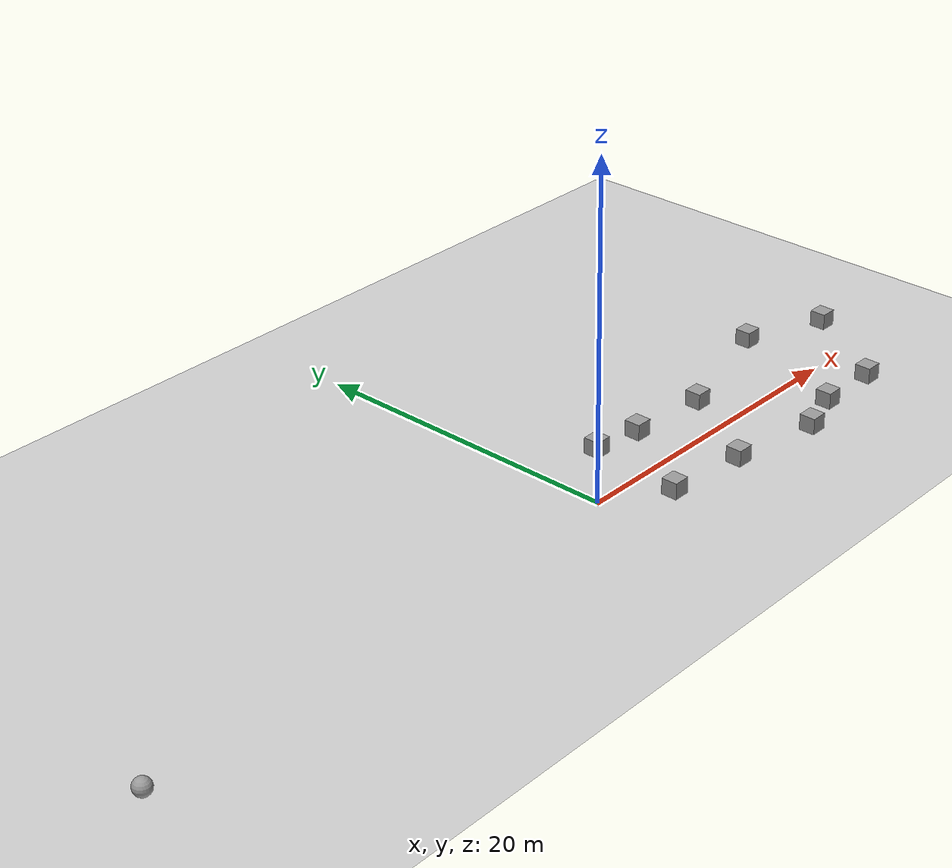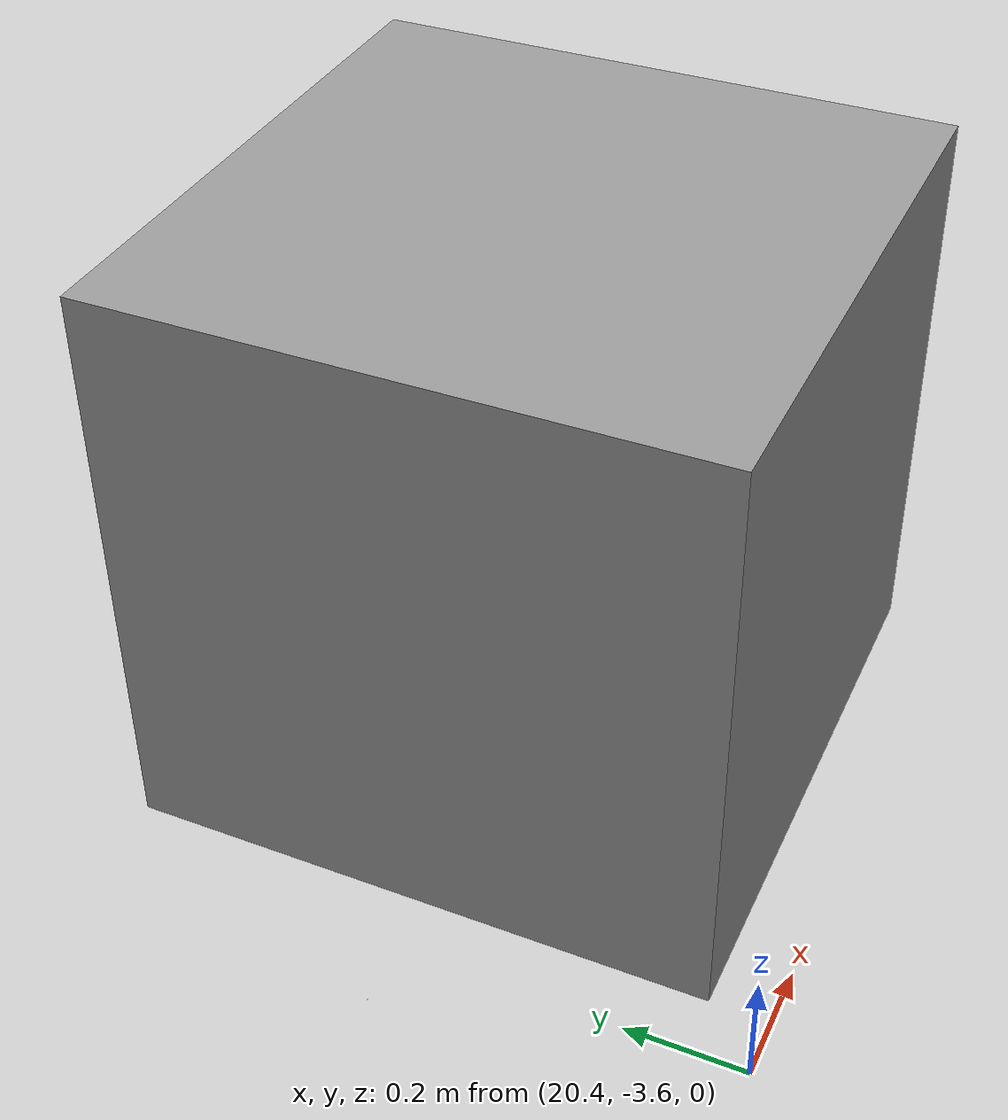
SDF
<sdf version="1.4">
 <world name="default">
  <model name="ground_plane">
   <static>1</static>
   <link name="link">
    <collision name="collision">
     <geometry><plane><normal>0 0 1</normal><size>100 100</size></plane></geometry>
     <surface><friction><ode><mu>100</mu><mu2>50</mu2></ode></friction></surface>
    </collision>
    <visual name="visual">
     <cast_shadows>0</cast_shadows>
     <geometry><plane><normal>0 0 1</normal><size>100 100</size></plane></geometry>
     <material>
      <script><uri>file://media/materials/scripts/gazebo.material</uri><name>Gazebo/Grey</name></script>
     </material>
    </visual>
    <velocity_decay><linear>0</linear><angular>0</angular></velocity_decay>
   </link>
  </model>
  <light name="sun" type="directional">
   <pose>0 0 10 0 -0 0</pose>
   <diffuse>0.8 0.8 0.8 1</diffuse>
   <specular>0.2 0.2 0.2 1</specular>
   <attenuation>
    <range>1000</range>
    <constant>0.9</constant>
    <linear>0.01</linear>
    <quadratic>0.001</quadratic>
   </attenuation>
   <direction>-0.5 0.1 -0.9</direction>
  </light>
  <physics type="ode">
   <gravity>0 0 -9.81</gravity>
   <max_step_size>0.01</max_step_size>
   <real_time_factor>1</real_time_factor>
   <real_time_update_rate>100</real_time_update_rate>
   <ode>
    <solver><type>quick</type><iters>5000</iters><sor>1.3</sor></solver>
    <constraints>
     <cfm>0</cfm>
     <erp>0.1</erp>
     <contact_max_correcting_vel>100</contact_max_correcting_vel>
     <contact_surface_layer>0.001</contact_surface_layer>
    </constraints>
   </ode>
  </physics>
  <scene><ambient>0.4 0.4 0.4 1</ambient><background>0.7 0.7 0.7 1</background><shadows>1</shadows></scene>
  <spherical_coordinates>
   <surface_model>EARTH_WGS84</surface_model>
   <latitude_deg>0</latitude_deg>
   <longitude_deg>0</longitude_deg>
   <elevation>0</elevation>
   <heading_deg>0</heading_deg>
  </spherical_coordinates>
  <model name="unit_sphere_2">
   <pose>-31.4187 -0.544868 0.5 0 -0 0</pose>
   <link name="link">
    <inertial>
     <mass>1</mass>
     <inertia><ixx>1</ixx><ixy>0</ixy><ixz>0</ixz><iyy>1</iyy><iyz>0</iyz><izz>1</izz></inertia>
    </inertial>
    <collision name="collision"><geometry><sphere><radius>0.5</radius></sphere></geometry></collision>
    <visual name="visual">
     <geometry><sphere><radius>0.5</radius></sphere></geometry>
     <material>
      <script><uri>file://media/materials/scripts/gazebo.material</uri><name>Gazebo/Grey</name></script>
     </material>
    </visual>
    <velocity_decay><linear>0</linear><angular>0</angular></velocity_decay>
   </link>
   <static>0</static>
  </model>
  <model name="unit_box_1">
   <pose>8.4453 -3 0.5 0 -0 0</pose>
   <link name="link">
    <inertial>
     <mass>1</mass>
     <inertia><ixx>1</ixx><ixy>0</ixy><ixz>0</ixz><iyy>1</iyy><iyz>0</iyz><izz>1</izz></inertia>
    </inertial>
    <collision name="collision"><geometry><box><size>1 1 1</size></box></geometry></collision>
    <visual name="visual">
     <geometry><box><size>1 1 1</size></box></geometry>
     <material>
      <script><uri>file://media/materials/scripts/gazebo.material</uri><name>Gazebo/Grey</name></script>
     </material>
    </visual>
    <velocity_decay><linear>0</linear><angular>0</angular></velocity_decay>
   </link>
   <static>0</static>
  </model>
  <model name="unit_box_2">
   <pose>14 -4 0.5 0 -0 0</pose>
   <link name="link">
    <inertial>
     <mass>1</mass>
     <inertia><ixx>1</ixx><ixy>0</ixy><ixz>0</ixz><iyy>1</iyy><iyz>0</iyz><izz>1</izz></inertia>
    </inertial>
    <collision name="collision"><geometry><box><size>1 1 1</size></box></geometry></collision>
    <visual name="visual">
     <geometry><box><size>1 1 1</size></box></geometry>
     <material>
      <script><uri>file://media/materials/scripts/gazebo.material</uri><name>Gazebo/Grey</name></script>
     </material>
    </visual>
    <velocity_decay><linear>0</linear><angular>0</angular></velocity_decay>
   </link>
   <static>0</static>
  </model>
  <model name="unit_box_3">
   <pose>7 3 0.5 0 -0 0</pose>
   <link name="link">
    <inertial>
     <mass>1</mass>
     <inertia><ixx>1</ixx><ixy>0</ixy><ixz>0</ixz><iyy>1</iyy><iyz>0</iyz><izz>1</izz></inertia>
    </inertial>
    <collision name="collision"><geometry><box><size>1 1 1</size></box></geometry></collision>
    <visual name="visual">
     <geometry><box><size>1 1 1</size></box></geometry>
     <material>
      <script><uri>file://media/materials/scripts/gazebo.material</uri><name>Gazebo/Grey</name></script>
     </material>
    </visual>
    <velocity_decay><linear>0</linear><angular>0</angular></velocity_decay>
   </link>
   <static>0</static>
  </model>
  <model name="unit_box_4">
   <pose>12 2.5989 0.5 -0 -0 -0</pose>
   <link name="link">
    <inertial>
     <mass>1</mass>
     <inertia><ixx>1</ixx><ixy>0</ixy><ixz>0</ixz><iyy>1</iyy><iyz>0</iyz><izz>1</izz></inertia>
    </inertial>
    <collision name="collision"><geometry><box><size>1 1 1</size></box></geometry></collision>
    <visual name="visual">
     <geometry><box><size>1 1 1</size></box></geometry>
     <material>
      <script><uri>file://media/materials/scripts/gazebo.material</uri><name>Gazebo/Grey</name></script>
     </material>
    </visual>
    <velocity_decay><linear>0</linear><angular>0</angular></velocity_decay>
   </link>
   <static>0</static>
  </model>
  <model name="unit_box_5">
   <pose>4 3.45674 0.5 0 -0 0</pose>
   <link name="link">
    <inertial>
     <mass>1</mass>
     <inertia><ixx>1</ixx><ixy>0</ixy><ixz>0</ixz><iyy>1</iyy><iyz>0</iyz><izz>1</izz></inertia>
    </inertial>
    <collision name="collision"><geometry><box><size>1 1 1</size></box></geometry></collision>
    <visual name="visual">
     <geometry><box><size>1 1 1</size></box></geometry>
     <material>
      <script><uri>file://media/materials/scripts/gazebo.material</uri><name>Gazebo/Grey</name></script>
     </material>
    </visual>
    <velocity_decay><linear>0</linear><angular>0</angular></velocity_decay>
   </link>
   <static>0</static>
  </model>
  <model name="unit_box_6">
   <pose>17 -3 0.5 -0 -0 -0</pose>
   <link name="link">
    <inertial>
     <mass>1</mass>
     <inertia><ixx>1</ixx><ixy>0</ixy><ixz>0</ixz><iyy>1</iyy><iyz>0</iyz><izz>1</izz></inertia>
    </inertial>
    <collision name="collision"><geometry><box><size>1 1 1</size></box></geometry></collision>
    <visual name="visual">
     <geometry><box><size>1 1 1</size></box></geometry>
     <material>
      <script><uri>file://media/materials/scripts/gazebo.material</uri><name>Gazebo/Grey</name></script>
     </material>
    </visual>
    <velocity_decay><linear>0</linear><angular>0</angular></velocity_decay>
   </link>
   <static>0</static>
  </model>
  <model name="unit_box_7">
   <pose>20 5 0.5 0 -0 0</pose>
   <link name="link">
    <inertial>
     <mass>1</mass>
     <inertia><ixx>1</ixx><ixy>0</ixy><ixz>0</ixz><iyy>1</iyy><iyz>0</iyz><izz>1</izz></inertia>
    </inertial>
    <collision name="collision"><geometry><box><size>1 1 1</size></box></geometry></collision>
    <visual name="visual">
     <geometry><box><size>1 1 1</size></box></geometry>
     <material>
      <script><uri>file://media/materials/scripts/gazebo.material</uri><name>Gazebo/Grey</name></script>
     </material>
    </visual>
    <velocity_decay><linear>0</linear><angular>0</angular></velocity_decay>
   </link>
   <static>0</static>
  </model>
  <model name="unit_box_8">
   <pose>21 -3 0.5 -0 -0 -0</pose>
   <link name="link">
    <inertial>
     <mass>1</mass>
     <inertia><ixx>1</ixx><ixy>0</ixy><ixz>0</ixz><iyy>1</iyy><iyz>0</iyz><izz>1</izz></inertia>
    </inertial>
    <collision name="collision"><geometry><box><size>1 1 1</size></box></geometry></collision>
    <visual name="visual">
     <geometry><box><size>1 1 1</size></box></geometry>
     <material>
      <script><uri>file://media/materials/scripts/gazebo.material</uri><name>Gazebo/Grey</name></script>
     </material>
    </visual>
    <velocity_decay><linear>0</linear><angular>0</angular></velocity_decay>
   </link>
   <static>0</static>
  </model>
  <model name="unit_box_9">
   <pose>3.46096 -2.45532 0.5 0 -0 0</pose>
   <link name="link">
    <inertial>
     <mass>1</mass>
     <inertia><ixx>1</ixx><ixy>0</ixy><ixz>0</ixz><iyy>1</iyy><iyz>0</iyz><izz>1</izz></inertia>
    </inertial>
    <collision name="collision"><geometry><box><size>1 1 1</size></box></geometry></collision>
    <visual name="visual">
     <geometry><box><size>1 1 1</size></box></geometry>
     <material>
      <script><uri>file://media/materials/scripts/gazebo.material</uri><name>Gazebo/Grey</name></script>
     </material>
    </visual>
    <velocity_decay><linear>0</linear><angular>0</angular></velocity_decay>
   </link>
   <static>0</static>
  </model>
  <model name="unit_box_10">
   <pose>25 3 0.5 -0 -0 -0</pose>
   <link name="link">
    <inertial>
     <mass>1</mass>
     <inertia><ixx>1</ixx><ixy>0</ixy><ixz>0</ixz><iyy>1</iyy><iyz>0</iyz><izz>1</izz></inertia>
    </inertial>
    <collision name="collision"><geometry><box><size>1 1 1</size></box></geometry></collision>
    <visual name="visual">
     <geometry><box><size>1 1 1</size></box></geometry>
     <material>
      <script><uri>file://media/materials/scripts/gazebo.material</uri><name>Gazebo/Grey</name></script>
     </material>
    </visual>
    <velocity_decay><linear>0</linear><angular>0</angular></velocity_decay>
   </link>
   <static>0</static>
  </model>
 </world>
</sdf>
